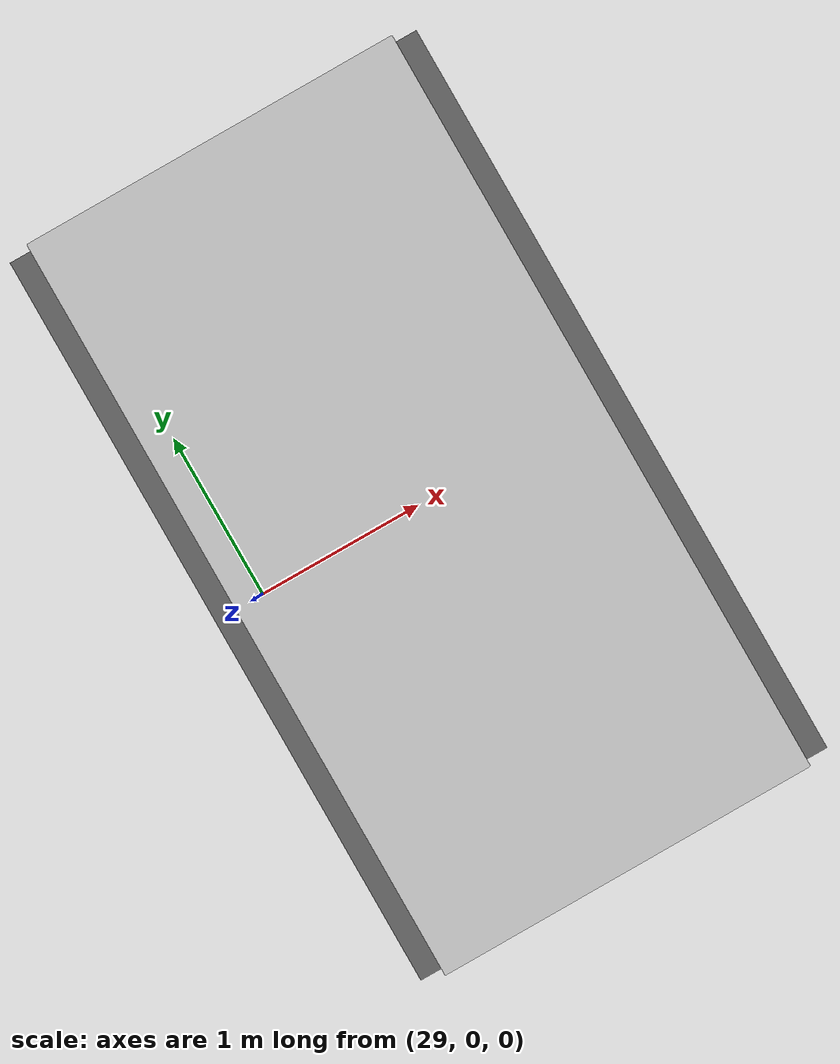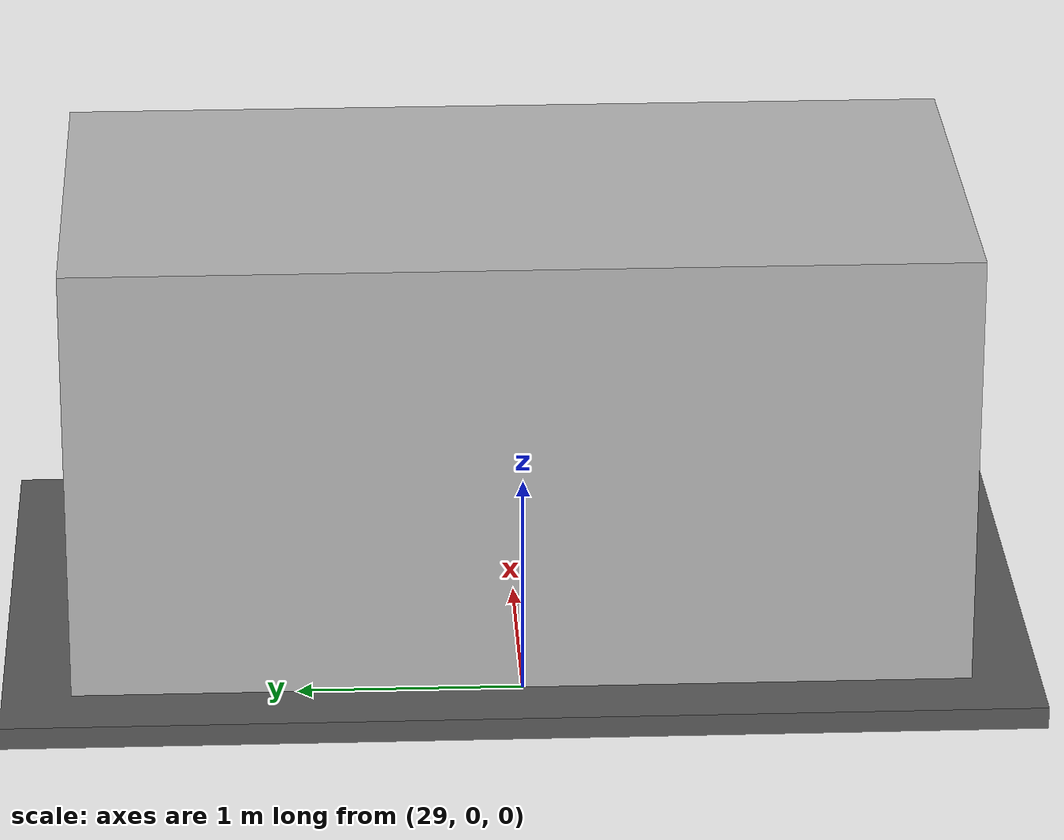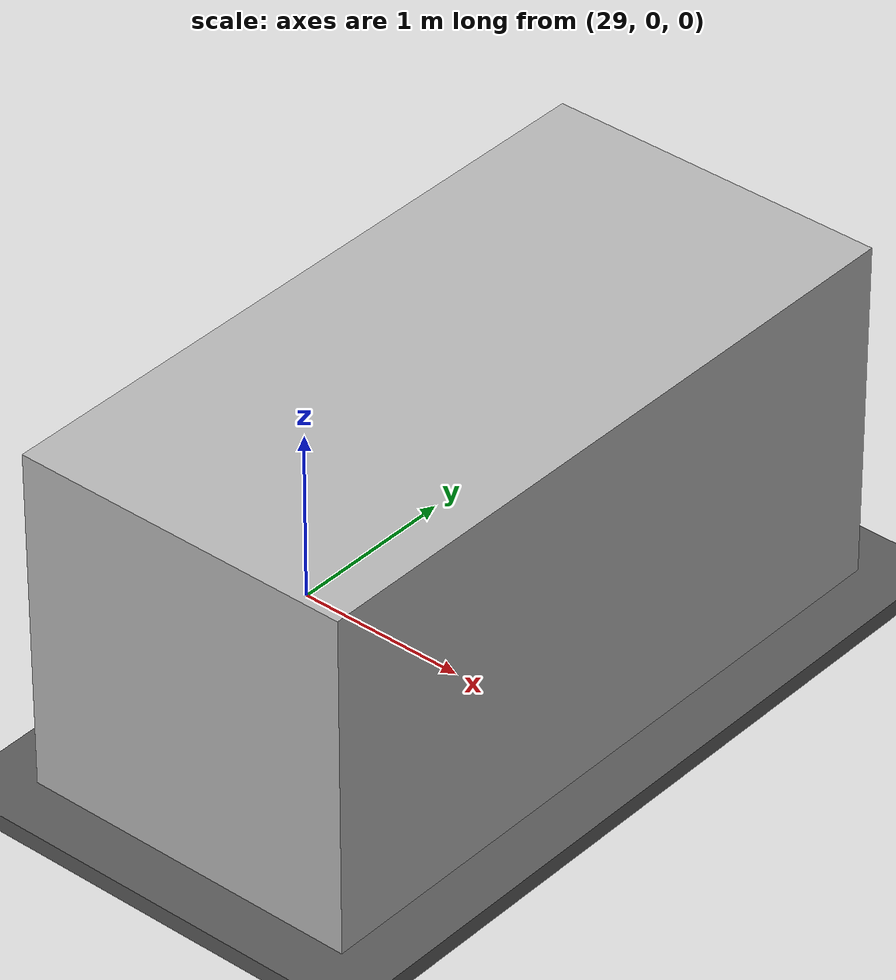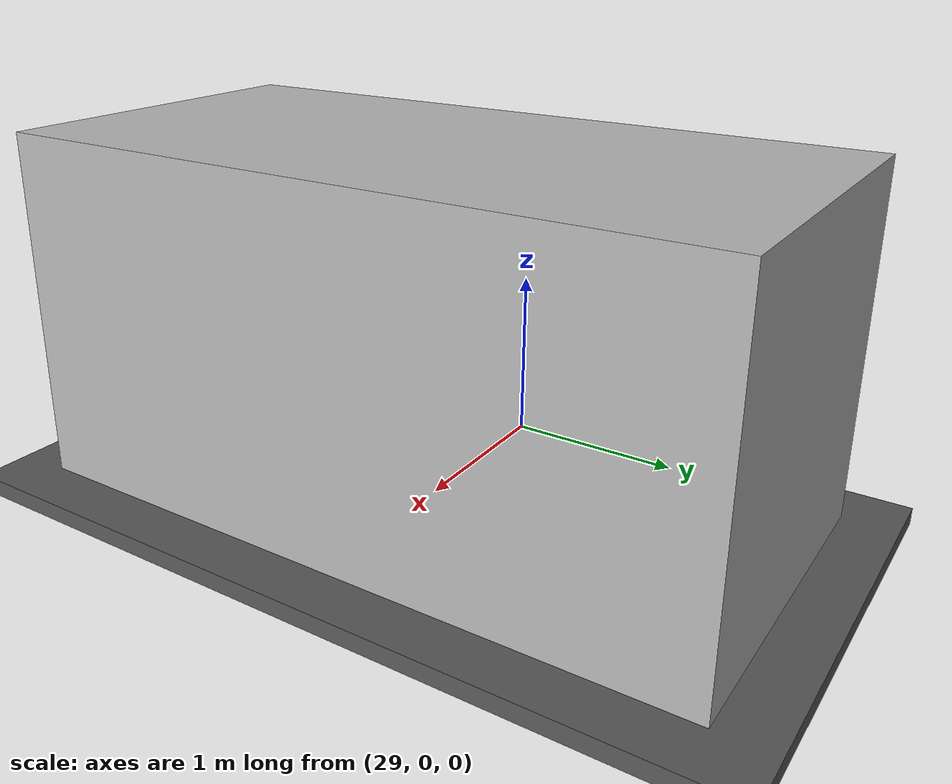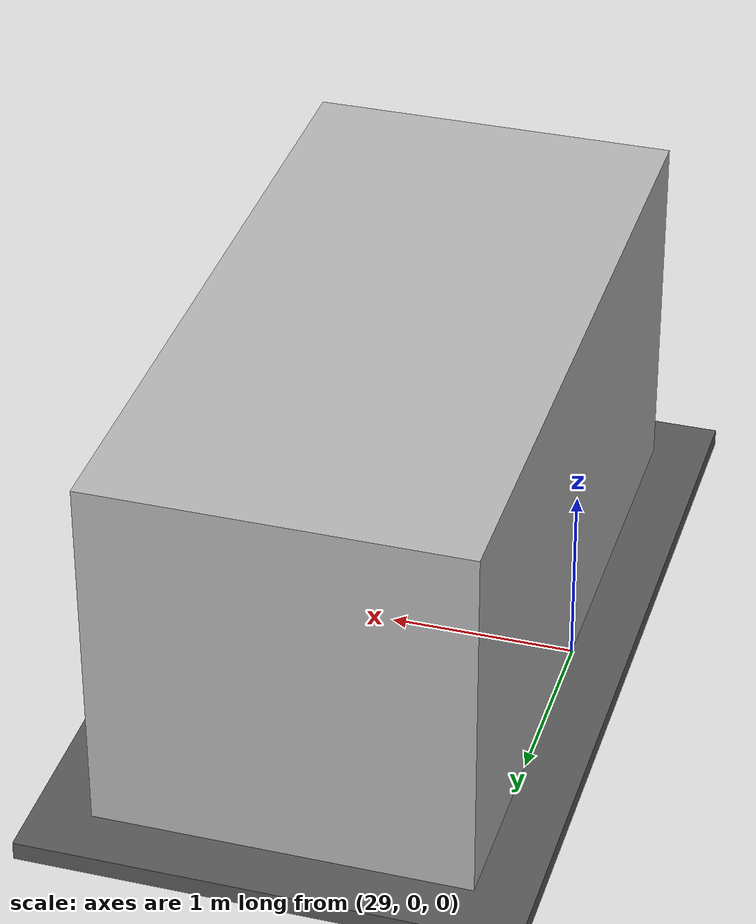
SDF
<?xml version="1.0"?>
<!-- POC RUNWAY WORLD  (GENERATED by scripts/generate_runway_world.py)      -->
<!-- 권원: POC 활주로 시나리오 26m x 400m, 5단계 (Requirement 1+2).         -->
<!-- Local ENU: x=drive 0..400m runway, y=width +/-13m (y=0                 -->
<!-- centreline=GO2 path). START LINE x=50 (green), goal flag (350,0) —     -->
<!-- drive 300 m; obstacles x[80,230],|y|<=11.                              -->
<!-- Header (physics/plugins/spherical_coordinates) reused from             -->
<!-- empty_world.sdf VERBATIM so GPS/NavSat/sensors behave identically.     -->
<!-- DO NOT hand-edit: regenerate via the generator.                        -->
<sdf version="1.8">
  <world name="av_clear">

    <physics name="default_physics" type="ode">
      <max_step_size>0.001</max_step_size>
      <real_time_factor>1.0</real_time_factor>
      <real_time_update_rate>125</real_time_update_rate>
    </physics>

    <plugin filename="gz-sim-physics-system" name="gz::sim::systems::Physics" />
    <plugin filename="gz-sim-sensors-system" name="gz::sim::systems::Sensors">
      <render_engine>ogre2</render_engine>
    </plugin>
    <plugin filename="gz-sim-user-commands-system" name="gz::sim::systems::UserCommands" />
    <plugin filename="gz-sim-scene-broadcaster-system" name="gz::sim::systems::SceneBroadcaster" />
    <plugin filename="gz-sim-imu-system" name="gz::sim::systems::Imu" />
    <plugin filename="gz-sim-navsat-system" name="gz::sim::systems::NavSat" />

    <spherical_coordinates>
      <surface_model>EARTH_WGS84</surface_model>
      <world_frame_orientation>ENU</world_frame_orientation>
      <latitude_deg>36.61002559225</latitude_deg>
      <longitude_deg>127.28772570583</longitude_deg>
      <elevation>0.0</elevation>
      <heading_deg>0.0</heading_deg>
    </spherical_coordinates>

    <light type="directional" name="sun">
      <cast_shadows>true</cast_shadows>
      <pose>200 0 30 0 0 0</pose>
      <diffuse>0.9 0.9 0.9 1</diffuse>
      <specular>0.2 0.2 0.2 1</specular>
      <attenuation>
        <range>2000</range>
        <constant>0.9</constant>
        <linear>0.001</linear>
        <quadratic>0.0001</quadratic>
      </attenuation>
      <direction>-0.3 0.2 -0.9</direction>
    </light>

    <model name="ground_plane">
      <static>true</static>
      <pose>200 0 0 0 0 0</pose>
      <link name="link">
        <collision name="collision">
          <geometry><plane><normal>0 0 1</normal><size>400 26</size></plane></geometry>
          <surface><friction><ode><mu>1.0</mu><mu2>1.0</mu2></ode></friction></surface>
        </collision>
        <visual name="visual">
          <pose>0 0 -0.06 0 0 0</pose>
          <geometry><plane><normal>0 0 1</normal><size>400 26</size></plane></geometry>
          <material>
            <ambient>0.20 0.35 0.20 1</ambient>
            <diffuse>0.25 0.45 0.25 1</diffuse>
          </material>
        </visual>
      </link>
    </model>
    <!-- Runway strip 400 x 26 (top at z=0) -->
    <model name="runway_surface">
      <static>true</static>
      <pose>200.0 0.0 -0.05 0 0 0</pose>
      <link name="link">
        <visual name="vis"><geometry><box><size>400.0 26.0 0.1</size></box></geometry>
          <material><ambient>0.35 0.35 0.35 1</ambient><diffuse>0.35 0.35 0.35 1</diffuse></material></visual>
      </link>
    </model>
    <model name="obs_wide4">
        <static>true</static>
        <pose>30.0 0.0 1.0 0 0 0</pose>
        <link name="link">
          <collision name="col">
            <geometry><box><size>2.0 4.0 2.0</size></box></geometry>
          </collision>
          <visual name="vis">
            <geometry><box><size>2.0 4.0 2.0</size></box></geometry>
          </visual>
        </link>
      </model>

  </world>
</sdf>
